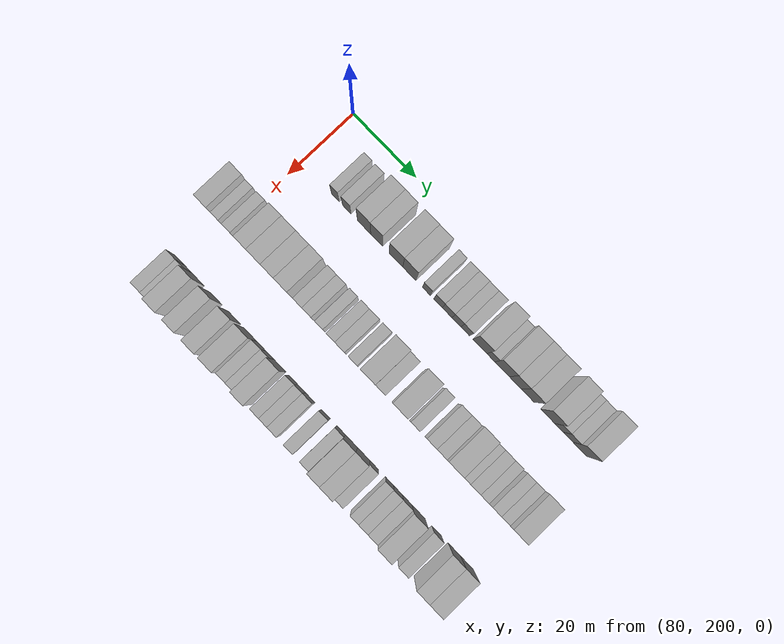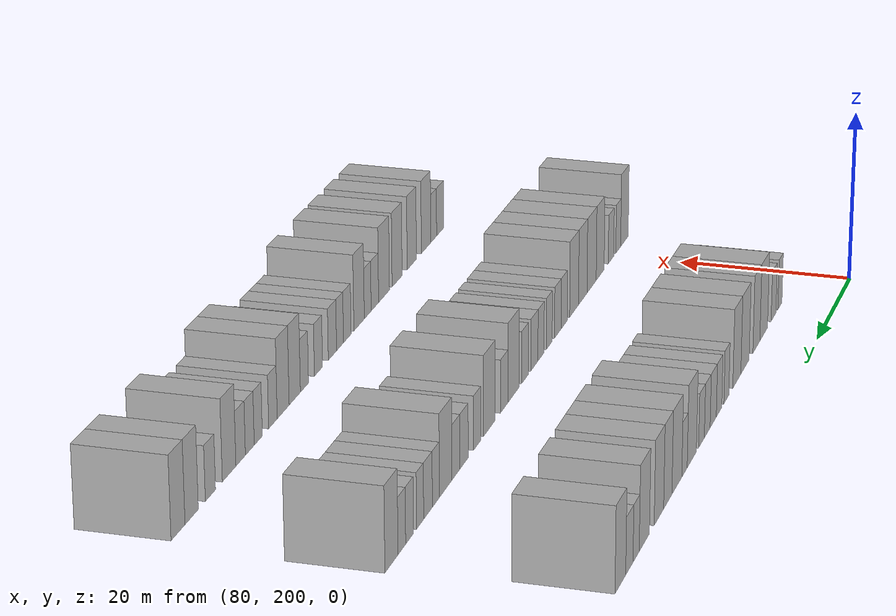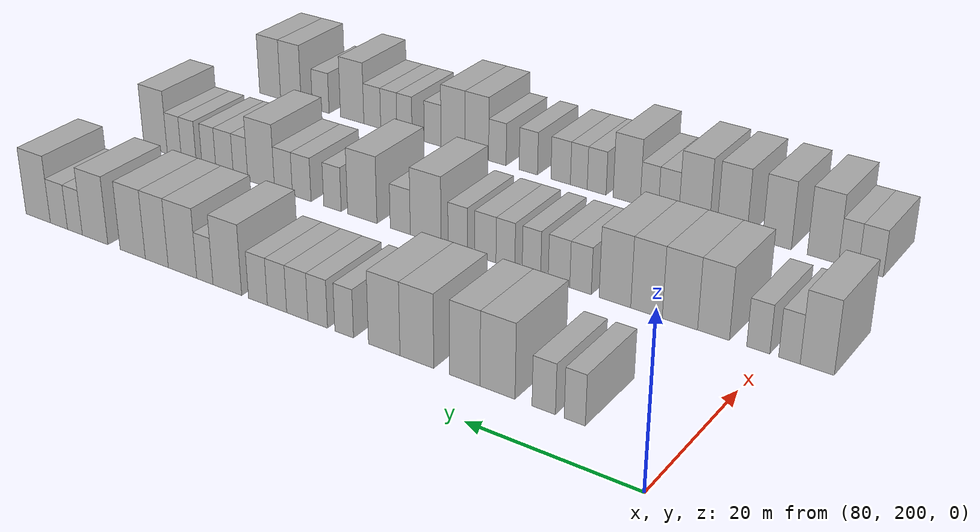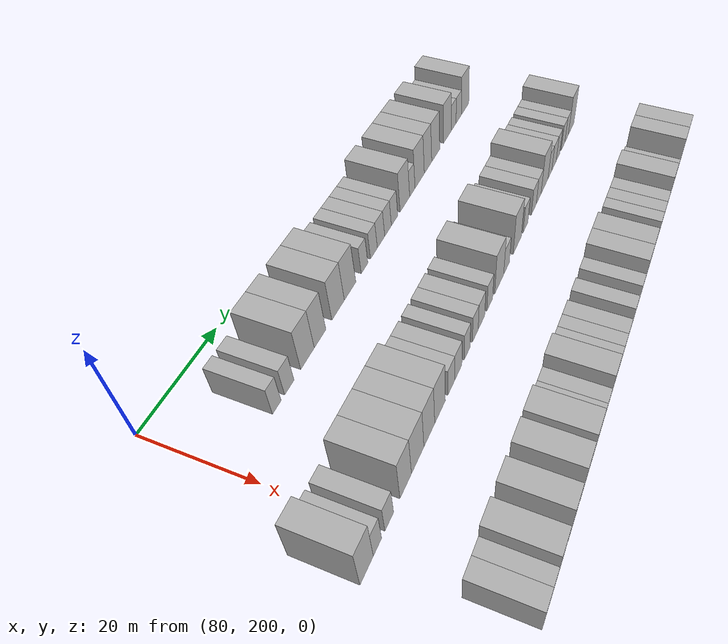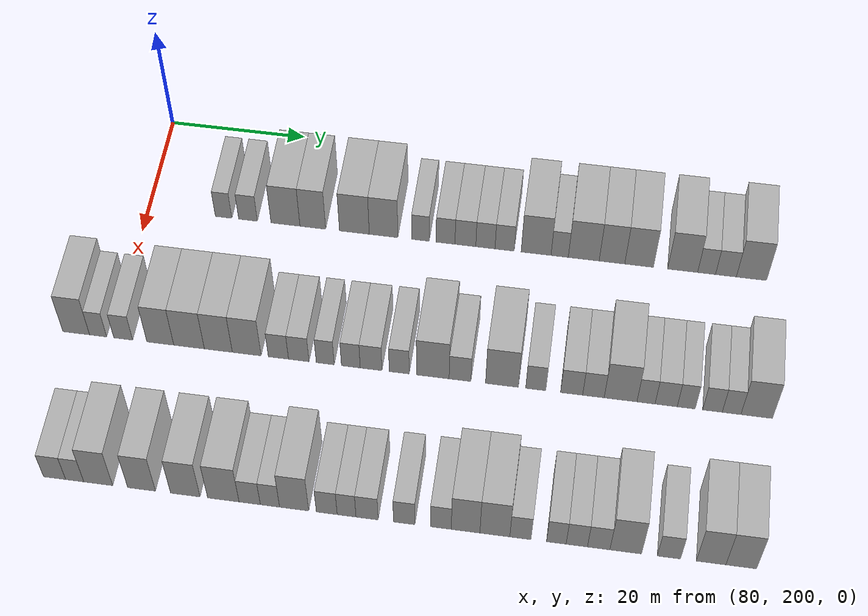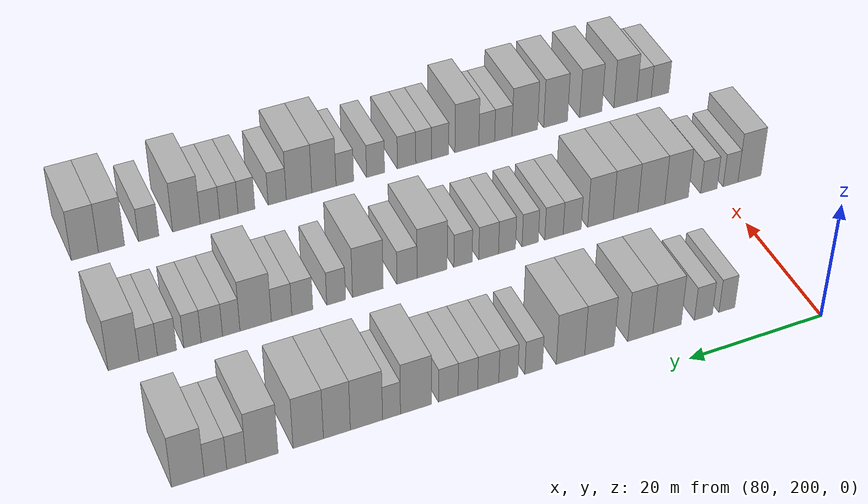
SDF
<sdf version="1.6">
 <world name="default">
  <model name="building_701">
   <static>1</static>
   <pose>91.0000 211.0076 0 0.000000 0.000000 0.000000</pose>
   <link name="link">
    <pose>0 0 3.00 0 0 0</pose>
    <collision name="collision"><geometry><box><size>10.0000 2.4177 6.0000</size></box></geometry></collision>
    <visual name="visual">
     <cast_shadows>0</cast_shadows>
     <geometry><box><size>10.0000 2.4177 6.0000</size></box></geometry>
     <material>
      <script>
       <uri>model://HANNAS_wall/materials/scripts</uri>
       <uri>model://HANNAS_wall/materials/textures</uri>
       <name>vrc/HANNAS_wall</name>
      </script>
     </material>
    </visual>
   </link>
  </model>
  <model name="building_702">
   <static>1</static>
   <pose>91.0000 214.5853 0 0.000000 0.000000 0.000000</pose>
   <link name="link">
    <pose>0 0 3.00 0 0 0</pose>
    <collision name="collision"><geometry><box><size>10.0000 2.7376 6.0000</size></box></geometry></collision>
    <visual name="visual">
     <cast_shadows>0</cast_shadows>
     <geometry><box><size>10.0000 2.7376 6.0000</size></box></geometry>
     <material>
      <script>
       <uri>model://HANNAS_wall/materials/scripts</uri>
       <uri>model://HANNAS_wall/materials/textures</uri>
       <name>vrc/HANNAS_wall</name>
      </script>
     </material>
    </visual>
   </link>
  </model>
  <model name="building_703">
   <static>1</static>
   <pose>91.0000 220.0649 0 0.000000 0.000000 0.000000</pose>
   <link name="link">
    <pose>0 0 4.50 0 0 0</pose>
    <collision name="collision"><geometry><box><size>10.0000 4.2215 9.0000</size></box></geometry></collision>
    <visual name="visual">
     <cast_shadows>0</cast_shadows>
     <geometry><box><size>10.0000 4.2215 9.0000</size></box></geometry>
     <material>
      <script>
       <uri>model://HANNAS_wall/materials/scripts</uri>
       <uri>model://HANNAS_wall/materials/textures</uri>
       <name>vrc/HANNAS_wall</name>
      </script>
     </material>
    </visual>
   </link>
  </model>
  <model name="building_704">
   <static>1</static>
   <pose>91.0000 224.0520 0 0.000000 0.000000 0.000000</pose>
   <link name="link">
    <pose>0 0 4.50 0 0 0</pose>
    <collision name="collision"><geometry><box><size>10.0000 3.7528 9.0000</size></box></geometry></collision>
    <visual name="visual">
     <cast_shadows>0</cast_shadows>
     <geometry><box><size>10.0000 3.7528 9.0000</size></box></geometry>
     <material>
      <script>
       <uri>model://HANNAS_wall/materials/scripts</uri>
       <uri>model://HANNAS_wall/materials/textures</uri>
       <name>vrc/HANNAS_wall</name>
      </script>
     </material>
    </visual>
   </link>
  </model>
  <model name="building_705">
   <static>1</static>
   <pose>91.0000 230.0885 0 0.000000 0.000000 0.000000</pose>
   <link name="link">
    <pose>0 0 4.50 0 0 0</pose>
    <collision name="collision"><geometry><box><size>10.0000 4.3200 9.0000</size></box></geometry></collision>
    <visual name="visual">
     <cast_shadows>0</cast_shadows>
     <geometry><box><size>10.0000 4.3200 9.0000</size></box></geometry>
     <material>
      <script>
       <uri>model://HANNAS_wall/materials/scripts</uri>
       <uri>model://HANNAS_wall/materials/textures</uri>
       <name>vrc/HANNAS_wall</name>
      </script>
     </material>
    </visual>
   </link>
  </model>
  <model name="building_706">
   <static>1</static>
   <pose>91.0000 234.3170 0 0.000000 0.000000 0.000000</pose>
   <link name="link">
    <pose>0 0 4.50 0 0 0</pose>
    <collision name="collision"><geometry><box><size>10.0000 4.1370 9.0000</size></box></geometry></collision>
    <visual name="visual">
     <cast_shadows>0</cast_shadows>
     <geometry><box><size>10.0000 4.1370 9.0000</size></box></geometry>
     <material>
      <script>
       <uri>model://HANNAS_wall/materials/scripts</uri>
       <uri>model://HANNAS_wall/materials/textures</uri>
       <name>vrc/HANNAS_wall</name>
      </script>
     </material>
    </visual>
   </link>
  </model>
  <model name="building_707">
   <static>1</static>
   <pose>91.0000 239.6479 0 0.000000 0.000000 0.000000</pose>
   <link name="link">
    <pose>0 0 3.00 0 0 0</pose>
    <collision name="collision"><geometry><box><size>10.0000 2.5249 6.0000</size></box></geometry></collision>
    <visual name="visual">
     <cast_shadows>0</cast_shadows>
     <geometry><box><size>10.0000 2.5249 6.0000</size></box></geometry>
     <material>
      <script>
       <uri>model://HANNAS_wall/materials/scripts</uri>
       <uri>model://HANNAS_wall/materials/textures</uri>
       <name>vrc/HANNAS_wall</name>
      </script>
     </material>
    </visual>
   </link>
  </model>
  <model name="building_708">
   <static>1</static>
   <pose>91.0000 243.2648 0 0.000000 0.000000 0.000000</pose>
   <link name="link">
    <pose>0 0 3.00 0 0 0</pose>
    <collision name="collision"><geometry><box><size>10.0000 2.7090 6.0000</size></box></geometry></collision>
    <visual name="visual">
     <cast_shadows>0</cast_shadows>
     <geometry><box><size>10.0000 2.7090 6.0000</size></box></geometry>
     <material>
      <script>
       <uri>model://HANNAS_wall/materials/scripts</uri>
       <uri>model://HANNAS_wall/materials/textures</uri>
       <name>vrc/HANNAS_wall</name>
      </script>
     </material>
    </visual>
   </link>
  </model>
  <model name="building_709">
   <static>1</static>
   <pose>91.0000 246.1154 0 0.000000 0.000000 0.000000</pose>
   <link name="link">
    <pose>0 0 3.00 0 0 0</pose>
    <collision name="collision"><geometry><box><size>10.0000 2.9921 6.0000</size></box></geometry></collision>
    <visual name="visual">
     <cast_shadows>0</cast_shadows>
     <geometry><box><size>10.0000 2.9921 6.0000</size></box></geometry>
     <material>
      <script>
       <uri>model://HANNAS_wall/materials/scripts</uri>
       <uri>model://HANNAS_wall/materials/textures</uri>
       <name>vrc/HANNAS_wall</name>
      </script>
     </material>
    </visual>
   </link>
  </model>
  <model name="building_710">
   <static>1</static>
   <pose>91.0000 248.9891 0 0.000000 0.000000 0.000000</pose>
   <link name="link">
    <pose>0 0 3.00 0 0 0</pose>
    <collision name="collision"><geometry><box><size>10.0000 2.7553 6.0000</size></box></geometry></collision>
    <visual name="visual">
     <cast_shadows>0</cast_shadows>
     <geometry><box><size>10.0000 2.7553 6.0000</size></box></geometry>
     <material>
      <script>
       <uri>model://HANNAS_wall/materials/scripts</uri>
       <uri>model://HANNAS_wall/materials/textures</uri>
       <name>vrc/HANNAS_wall</name>
      </script>
     </material>
    </visual>
   </link>
  </model>
  <model name="building_711">
   <static>1</static>
   <pose>91.0000 251.7352 0 0.000000 0.000000 0.000000</pose>
   <link name="link">
    <pose>0 0 3.00 0 0 0</pose>
    <collision name="collision"><geometry><box><size>10.0000 2.7369 6.0000</size></box></geometry></collision>
    <visual name="visual">
     <cast_shadows>0</cast_shadows>
     <geometry><box><size>10.0000 2.7369 6.0000</size></box></geometry>
     <material>
      <script>
       <uri>model://HANNAS_wall/materials/scripts</uri>
       <uri>model://HANNAS_wall/materials/textures</uri>
       <name>vrc/HANNAS_wall</name>
      </script>
     </material>
    </visual>
   </link>
  </model>
  <model name="building_712">
   <static>1</static>
   <pose>91.0000 256.2351 0 0.000000 0.000000 0.000000</pose>
   <link name="link">
    <pose>0 0 4.50 0 0 0</pose>
    <collision name="collision"><geometry><box><size>10.0000 4.2628 9.0000</size></box></geometry></collision>
    <visual name="visual">
     <cast_shadows>0</cast_shadows>
     <geometry><box><size>10.0000 4.2628 9.0000</size></box></geometry>
     <material>
      <script>
       <uri>model://HANNAS_wall/materials/scripts</uri>
       <uri>model://HANNAS_wall/materials/textures</uri>
       <name>vrc/HANNAS_wall</name>
      </script>
     </material>
    </visual>
   </link>
  </model>
  <model name="building_713">
   <static>1</static>
   <pose>91.0000 259.5935 0 0.000000 0.000000 0.000000</pose>
   <link name="link">
    <pose>0 0 3.00 0 0 0</pose>
    <collision name="collision"><geometry><box><size>10.0000 2.4540 6.0000</size></box></geometry></collision>
    <visual name="visual">
     <cast_shadows>0</cast_shadows>
     <geometry><box><size>10.0000 2.4540 6.0000</size></box></geometry>
     <material>
      <script>
       <uri>model://HANNAS_wall/materials/scripts</uri>
       <uri>model://HANNAS_wall/materials/textures</uri>
       <name>vrc/HANNAS_wall</name>
      </script>
     </material>
    </visual>
   </link>
  </model>
  <model name="building_714">
   <static>1</static>
   <pose>91.0000 263.0148 0 0.000000 0.000000 0.000000</pose>
   <link name="link">
    <pose>0 0 4.50 0 0 0</pose>
    <collision name="collision"><geometry><box><size>10.0000 4.3886 9.0000</size></box></geometry></collision>
    <visual name="visual">
     <cast_shadows>0</cast_shadows>
     <geometry><box><size>10.0000 4.3886 9.0000</size></box></geometry>
     <material>
      <script>
       <uri>model://HANNAS_wall/materials/scripts</uri>
       <uri>model://HANNAS_wall/materials/textures</uri>
       <name>vrc/HANNAS_wall</name>
      </script>
     </material>
    </visual>
   </link>
  </model>
  <model name="building_715">
   <static>1</static>
   <pose>91.0000 267.0245 0 0.000000 0.000000 0.000000</pose>
   <link name="link">
    <pose>0 0 4.50 0 0 0</pose>
    <collision name="collision"><geometry><box><size>10.0000 3.6309 9.0000</size></box></geometry></collision>
    <visual name="visual">
     <cast_shadows>0</cast_shadows>
     <geometry><box><size>10.0000 3.6309 9.0000</size></box></geometry>
     <material>
      <script>
       <uri>model://HANNAS_wall/materials/scripts</uri>
       <uri>model://HANNAS_wall/materials/textures</uri>
       <name>vrc/HANNAS_wall</name>
      </script>
     </material>
    </visual>
   </link>
  </model>
  <model name="building_716">
   <static>1</static>
   <pose>91.0000 270.8690 0 0.000000 0.000000 0.000000</pose>
   <link name="link">
    <pose>0 0 4.50 0 0 0</pose>
    <collision name="collision"><geometry><box><size>10.0000 4.0580 9.0000</size></box></geometry></collision>
    <visual name="visual">
     <cast_shadows>0</cast_shadows>
     <geometry><box><size>10.0000 4.0580 9.0000</size></box></geometry>
     <material>
      <script>
       <uri>model://HANNAS_wall/materials/scripts</uri>
       <uri>model://HANNAS_wall/materials/textures</uri>
       <name>vrc/HANNAS_wall</name>
      </script>
     </material>
    </visual>
   </link>
  </model>
  <model name="building_717">
   <static>1</static>
   <pose>91.0000 277.0155 0 0.000000 0.000000 0.000000</pose>
   <link name="link">
    <pose>0 0 4.50 0 0 0</pose>
    <collision name="collision"><geometry><box><size>10.0000 4.2349 9.0000</size></box></geometry></collision>
    <visual name="visual">
     <cast_shadows>0</cast_shadows>
     <geometry><box><size>10.0000 4.2349 9.0000</size></box></geometry>
     <material>
      <script>
       <uri>model://HANNAS_wall/materials/scripts</uri>
       <uri>model://HANNAS_wall/materials/textures</uri>
       <name>vrc/HANNAS_wall</name>
      </script>
     </material>
    </visual>
   </link>
  </model>
  <model name="building_718">
   <static>1</static>
   <pose>91.0000 280.3925 0 0.000000 0.000000 0.000000</pose>
   <link name="link">
    <pose>0 0 3.00 0 0 0</pose>
    <collision name="collision"><geometry><box><size>10.0000 2.5193 6.0000</size></box></geometry></collision>
    <visual name="visual">
     <cast_shadows>0</cast_shadows>
     <geometry><box><size>10.0000 2.5193 6.0000</size></box></geometry>
     <material>
      <script>
       <uri>model://HANNAS_wall/materials/scripts</uri>
       <uri>model://HANNAS_wall/materials/textures</uri>
       <name>vrc/HANNAS_wall</name>
      </script>
     </material>
    </visual>
   </link>
  </model>
  <model name="building_719">
   <static>1</static>
   <pose>91.0000 283.1138 0 0.000000 0.000000 0.000000</pose>
   <link name="link">
    <pose>0 0 3.00 0 0 0</pose>
    <collision name="collision"><geometry><box><size>10.0000 2.9232 6.0000</size></box></geometry></collision>
    <visual name="visual">
     <cast_shadows>0</cast_shadows>
     <geometry><box><size>10.0000 2.9232 6.0000</size></box></geometry>
     <material>
      <script>
       <uri>model://HANNAS_wall/materials/scripts</uri>
       <uri>model://HANNAS_wall/materials/textures</uri>
       <name>vrc/HANNAS_wall</name>
      </script>
     </material>
    </visual>
   </link>
  </model>
  <model name="building_720">
   <static>1</static>
   <pose>91.0000 286.6935 0 0.000000 0.000000 0.000000</pose>
   <link name="link">
    <pose>0 0 4.50 0 0 0</pose>
    <collision name="collision"><geometry><box><size>10.0000 4.2363 9.0000</size></box></geometry></collision>
    <visual name="visual">
     <cast_shadows>0</cast_shadows>
     <geometry><box><size>10.0000 4.2363 9.0000</size></box></geometry>
     <material>
      <script>
       <uri>model://HANNAS_wall/materials/scripts</uri>
       <uri>model://HANNAS_wall/materials/textures</uri>
       <name>vrc/HANNAS_wall</name>
      </script>
     </material>
    </visual>
   </link>
  </model>
  <model name="building_880">
   <static>1</static>
   <pose>113.0000 194.8493 0 0.000000 0.000000 0.000000</pose>
   <link name="link">
    <pose>0 0 4.50 0 0 0</pose>
    <collision name="collision"><geometry><box><size>10.0000 3.7716 9.0000</size></box></geometry></collision>
    <visual name="visual">
     <cast_shadows>0</cast_shadows>
     <geometry><box><size>10.0000 3.7716 9.0000</size></box></geometry>
     <material>
      <script>
       <uri>model://HANNAS_wall/materials/scripts</uri>
       <uri>model://HANNAS_wall/materials/textures</uri>
       <name>vrc/HANNAS_wall</name>
      </script>
     </material>
    </visual>
   </link>
  </model>
  <model name="building_881">
   <static>1</static>
   <pose>113.0000 197.9437 0 0.000000 0.000000 0.000000</pose>
   <link name="link">
    <pose>0 0 3.00 0 0 0</pose>
    <collision name="collision"><geometry><box><size>10.0000 2.4173 6.0000</size></box></geometry></collision>
    <visual name="visual">
     <cast_shadows>0</cast_shadows>
     <geometry><box><size>10.0000 2.4173 6.0000</size></box></geometry>
     <material>
      <script>
       <uri>model://HANNAS_wall/materials/scripts</uri>
       <uri>model://HANNAS_wall/materials/textures</uri>
       <name>vrc/HANNAS_wall</name>
      </script>
     </material>
    </visual>
   </link>
  </model>
  <model name="building_882">
   <static>1</static>
   <pose>113.0000 201.4811 0 0.000000 0.000000 0.000000</pose>
   <link name="link">
    <pose>0 0 3.00 0 0 0</pose>
    <collision name="collision"><geometry><box><size>10.0000 2.6575 6.0000</size></box></geometry></collision>
    <visual name="visual">
     <cast_shadows>0</cast_shadows>
     <geometry><box><size>10.0000 2.6575 6.0000</size></box></geometry>
     <material>
      <script>
       <uri>model://HANNAS_wall/materials/scripts</uri>
       <uri>model://HANNAS_wall/materials/textures</uri>
       <name>vrc/HANNAS_wall</name>
      </script>
     </material>
    </visual>
   </link>
  </model>
  <model name="building_883">
   <static>1</static>
   <pose>113.0000 206.6975 0 0.000000 0.000000 0.000000</pose>
   <link name="link">
    <pose>0 0 4.50 0 0 0</pose>
    <collision name="collision"><geometry><box><size>10.0000 3.7753 9.0000</size></box></geometry></collision>
    <visual name="visual">
     <cast_shadows>0</cast_shadows>
     <geometry><box><size>10.0000 3.7753 9.0000</size></box></geometry>
     <material>
      <script>
       <uri>model://HANNAS_wall/materials/scripts</uri>
       <uri>model://HANNAS_wall/materials/textures</uri>
       <name>vrc/HANNAS_wall</name>
      </script>
     </material>
    </visual>
   </link>
  </model>
  <model name="building_884">
   <static>1</static>
   <pose>113.0000 210.7255 0 0.000000 0.000000 0.000000</pose>
   <link name="link">
    <pose>0 0 4.50 0 0 0</pose>
    <collision name="collision"><geometry><box><size>10.0000 4.2805 9.0000</size></box></geometry></collision>
    <visual name="visual">
     <cast_shadows>0</cast_shadows>
     <geometry><box><size>10.0000 4.2805 9.0000</size></box></geometry>
     <material>
      <script>
       <uri>model://HANNAS_wall/materials/scripts</uri>
       <uri>model://HANNAS_wall/materials/textures</uri>
       <name>vrc/HANNAS_wall</name>
      </script>
     </material>
    </visual>
   </link>
  </model>
  <model name="building_885">
   <static>1</static>
   <pose>113.0000 214.8183 0 0.000000 0.000000 0.000000</pose>
   <link name="link">
    <pose>0 0 4.50 0 0 0</pose>
    <collision name="collision"><geometry><box><size>10.0000 3.9052 9.0000</size></box></geometry></collision>
    <visual name="visual">
     <cast_shadows>0</cast_shadows>
     <geometry><box><size>10.0000 3.9052 9.0000</size></box></geometry>
     <material>
      <script>
       <uri>model://HANNAS_wall/materials/scripts</uri>
       <uri>model://HANNAS_wall/materials/textures</uri>
       <name>vrc/HANNAS_wall</name>
      </script>
     </material>
    </visual>
   </link>
  </model>
  <model name="building_886">
   <static>1</static>
   <pose>113.0000 218.7772 0 0.000000 0.000000 0.000000</pose>
   <link name="link">
    <pose>0 0 4.50 0 0 0</pose>
    <collision name="collision"><geometry><box><size>10.0000 4.0126 9.0000</size></box></geometry></collision>
    <visual name="visual">
     <cast_shadows>0</cast_shadows>
     <geometry><box><size>10.0000 4.0126 9.0000</size></box></geometry>
     <material>
      <script>
       <uri>model://HANNAS_wall/materials/scripts</uri>
       <uri>model://HANNAS_wall/materials/textures</uri>
       <name>vrc/HANNAS_wall</name>
      </script>
     </material>
    </visual>
   </link>
  </model>
  <model name="building_887">
   <static>1</static>
   <pose>113.0000 223.1815 0 0.000000 0.000000 0.000000</pose>
   <link name="link">
    <pose>0 0 3.00 0 0 0</pose>
    <collision name="collision"><geometry><box><size>10.0000 2.7960 6.0000</size></box></geometry></collision>
    <visual name="visual">
     <cast_shadows>0</cast_shadows>
     <geometry><box><size>10.0000 2.7960 6.0000</size></box></geometry>
     <material>
      <script>
       <uri>model://HANNAS_wall/materials/scripts</uri>
       <uri>model://HANNAS_wall/materials/textures</uri>
       <name>vrc/HANNAS_wall</name>
      </script>
     </material>
    </visual>
   </link>
  </model>
  <model name="building_888">
   <static>1</static>
   <pose>113.0000 226.0019 0 0.000000 0.000000 0.000000</pose>
   <link name="link">
    <pose>0 0 3.00 0 0 0</pose>
    <collision name="collision"><geometry><box><size>10.0000 2.8448 6.0000</size></box></geometry></collision>
    <visual name="visual">
     <cast_shadows>0</cast_shadows>
     <geometry><box><size>10.0000 2.8448 6.0000</size></box></geometry>
     <material>
      <script>
       <uri>model://HANNAS_wall/materials/scripts</uri>
       <uri>model://HANNAS_wall/materials/textures</uri>
       <name>vrc/HANNAS_wall</name>
      </script>
     </material>
    </visual>
   </link>
  </model>
  <model name="building_889">
   <static>1</static>
   <pose>113.0000 229.6668 0 0.000000 0.000000 0.000000</pose>
   <link name="link">
    <pose>0 0 3.00 0 0 0</pose>
    <collision name="collision"><geometry><box><size>10.0000 2.4850 6.0000</size></box></geometry></collision>
    <visual name="visual">
     <cast_shadows>0</cast_shadows>
     <geometry><box><size>10.0000 2.4850 6.0000</size></box></geometry>
     <material>
      <script>
       <uri>model://HANNAS_wall/materials/scripts</uri>
       <uri>model://HANNAS_wall/materials/textures</uri>
       <name>vrc/HANNAS_wall</name>
      </script>
     </material>
    </visual>
   </link>
  </model>
  <model name="building_890">
   <static>1</static>
   <pose>113.0000 233.2000 0 0.000000 0.000000 0.000000</pose>
   <link name="link">
    <pose>0 0 3.00 0 0 0</pose>
    <collision name="collision"><geometry><box><size>10.0000 2.5813 6.0000</size></box></geometry></collision>
    <visual name="visual">
     <cast_shadows>0</cast_shadows>
     <geometry><box><size>10.0000 2.5813 6.0000</size></box></geometry>
     <material>
      <script>
       <uri>model://HANNAS_wall/materials/scripts</uri>
       <uri>model://HANNAS_wall/materials/textures</uri>
       <name>vrc/HANNAS_wall</name>
      </script>
     </material>
    </visual>
   </link>
  </model>
  <model name="building_891">
   <static>1</static>
   <pose>113.0000 235.9859 0 0.000000 0.000000 0.000000</pose>
   <link name="link">
    <pose>0 0 3.00 0 0 0</pose>
    <collision name="collision"><geometry><box><size>10.0000 2.9905 6.0000</size></box></geometry></collision>
    <visual name="visual">
     <cast_shadows>0</cast_shadows>
     <geometry><box><size>10.0000 2.9905 6.0000</size></box></geometry>
     <material>
      <script>
       <uri>model://HANNAS_wall/materials/scripts</uri>
       <uri>model://HANNAS_wall/materials/textures</uri>
       <name>vrc/HANNAS_wall</name>
      </script>
     </material>
    </visual>
   </link>
  </model>
  <model name="building_892">
   <static>1</static>
   <pose>113.0000 239.8513 0 0.000000 0.000000 0.000000</pose>
   <link name="link">
    <pose>0 0 3.00 0 0 0</pose>
    <collision name="collision"><geometry><box><size>10.0000 2.7404 6.0000</size></box></geometry></collision>
    <visual name="visual">
     <cast_shadows>0</cast_shadows>
     <geometry><box><size>10.0000 2.7404 6.0000</size></box></geometry>
     <material>
      <script>
       <uri>model://HANNAS_wall/materials/scripts</uri>
       <uri>model://HANNAS_wall/materials/textures</uri>
       <name>vrc/HANNAS_wall</name>
      </script>
     </material>
    </visual>
   </link>
  </model>
  <model name="building_893">
   <static>1</static>
   <pose>113.0000 244.4553 0 0.000000 0.000000 0.000000</pose>
   <link name="link">
    <pose>0 0 4.50 0 0 0</pose>
    <collision name="collision"><geometry><box><size>10.0000 4.4674 9.0000</size></box></geometry></collision>
    <visual name="visual">
     <cast_shadows>0</cast_shadows>
     <geometry><box><size>10.0000 4.4674 9.0000</size></box></geometry>
     <material>
      <script>
       <uri>model://HANNAS_wall/materials/scripts</uri>
       <uri>model://HANNAS_wall/materials/textures</uri>
       <name>vrc/HANNAS_wall</name>
      </script>
     </material>
    </visual>
   </link>
  </model>
  <model name="building_894">
   <static>1</static>
   <pose>113.0000 248.1732 0 0.000000 0.000000 0.000000</pose>
   <link name="link">
    <pose>0 0 3.00 0 0 0</pose>
    <collision name="collision"><geometry><box><size>10.0000 2.9684 6.0000</size></box></geometry></collision>
    <visual name="visual">
     <cast_shadows>0</cast_shadows>
     <geometry><box><size>10.0000 2.9684 6.0000</size></box></geometry>
     <material>
      <script>
       <uri>model://HANNAS_wall/materials/scripts</uri>
       <uri>model://HANNAS_wall/materials/textures</uri>
       <name>vrc/HANNAS_wall</name>
      </script>
     </material>
    </visual>
   </link>
  </model>
  <model name="building_895">
   <static>1</static>
   <pose>113.0000 253.8901 0 0.000000 0.000000 0.000000</pose>
   <link name="link">
    <pose>0 0 4.50 0 0 0</pose>
    <collision name="collision"><geometry><box><size>10.0000 4.4656 9.0000</size></box></geometry></collision>
    <visual name="visual">
     <cast_shadows>0</cast_shadows>
     <geometry><box><size>10.0000 4.4656 9.0000</size></box></geometry>
     <material>
      <script>
       <uri>model://HANNAS_wall/materials/scripts</uri>
       <uri>model://HANNAS_wall/materials/textures</uri>
       <name>vrc/HANNAS_wall</name>
      </script>
     </material>
    </visual>
   </link>
  </model>
  <model name="building_896">
   <static>1</static>
   <pose>113.0000 258.4856 0 0.000000 0.000000 0.000000</pose>
   <link name="link">
    <pose>0 0 3.00 0 0 0</pose>
    <collision name="collision"><geometry><box><size>10.0000 2.7254 6.0000</size></box></geometry></collision>
    <visual name="visual">
     <cast_shadows>0</cast_shadows>
     <geometry><box><size>10.0000 2.7254 6.0000</size></box></geometry>
     <material>
      <script>
       <uri>model://HANNAS_wall/materials/scripts</uri>
       <uri>model://HANNAS_wall/materials/textures</uri>
       <name>vrc/HANNAS_wall</name>
      </script>
     </material>
    </visual>
   </link>
  </model>
  <model name="building_897">
   <static>1</static>
   <pose>113.0000 263.3397 0 0.000000 0.000000 0.000000</pose>
   <link name="link">
    <pose>0 0 3.00 0 0 0</pose>
    <collision name="collision"><geometry><box><size>10.0000 2.9828 6.0000</size></box></geometry></collision>
    <visual name="visual">
     <cast_shadows>0</cast_shadows>
     <geometry><box><size>10.0000 2.9828 6.0000</size></box></geometry>
     <material>
      <script>
       <uri>model://HANNAS_wall/materials/scripts</uri>
       <uri>model://HANNAS_wall/materials/textures</uri>
       <name>vrc/HANNAS_wall</name>
      </script>
     </material>
    </visual>
   </link>
  </model>
  <model name="building_898">
   <static>1</static>
   <pose>113.0000 266.2859 0 0.000000 0.000000 0.000000</pose>
   <link name="link">
    <pose>0 0 3.00 0 0 0</pose>
    <collision name="collision"><geometry><box><size>10.0000 2.9097 6.0000</size></box></geometry></collision>
    <visual name="visual">
     <cast_shadows>0</cast_shadows>
     <geometry><box><size>10.0000 2.9097 6.0000</size></box></geometry>
     <material>
      <script>
       <uri>model://HANNAS_wall/materials/scripts</uri>
       <uri>model://HANNAS_wall/materials/textures</uri>
       <name>vrc/HANNAS_wall</name>
      </script>
     </material>
    </visual>
   </link>
  </model>
  <model name="building_899">
   <static>1</static>
   <pose>113.0000 269.9465 0 0.000000 0.000000 0.000000</pose>
   <link name="link">
    <pose>0 0 4.50 0 0 0</pose>
    <collision name="collision"><geometry><box><size>10.0000 4.4114 9.0000</size></box></geometry></collision>
    <visual name="visual">
     <cast_shadows>0</cast_shadows>
     <geometry><box><size>10.0000 4.4114 9.0000</size></box></geometry>
     <material>
      <script>
       <uri>model://HANNAS_wall/materials/scripts</uri>
       <uri>model://HANNAS_wall/materials/textures</uri>
       <name>vrc/HANNAS_wall</name>
      </script>
     </material>
    </visual>
   </link>
  </model>
  <model name="building_900">
   <static>1</static>
   <pose>113.0000 273.3688 0 0.000000 0.000000 0.000000</pose>
   <link name="link">
    <pose>0 0 3.00 0 0 0</pose>
    <collision name="collision"><geometry><box><size>10.0000 2.4332 6.0000</size></box></geometry></collision>
    <visual name="visual">
     <cast_shadows>0</cast_shadows>
     <geometry><box><size>10.0000 2.4332 6.0000</size></box></geometry>
     <material>
      <script>
       <uri>model://HANNAS_wall/materials/scripts</uri>
       <uri>model://HANNAS_wall/materials/textures</uri>
       <name>vrc/HANNAS_wall</name>
      </script>
     </material>
    </visual>
   </link>
  </model>
  <model name="building_901">
   <static>1</static>
   <pose>113.0000 276.0697 0 0.000000 0.000000 0.000000</pose>
   <link name="link">
    <pose>0 0 3.00 0 0 0</pose>
    <collision name="collision"><geometry><box><size>10.0000 2.9687 6.0000</size></box></geometry></collision>
    <visual name="visual">
     <cast_shadows>0</cast_shadows>
     <geometry><box><size>10.0000 2.9687 6.0000</size></box></geometry>
     <material>
      <script>
       <uri>model://HANNAS_wall/materials/scripts</uri>
       <uri>model://HANNAS_wall/materials/textures</uri>
       <name>vrc/HANNAS_wall</name>
      </script>
     </material>
    </visual>
   </link>
  </model>
  <model name="building_902">
   <static>1</static>
   <pose>113.0000 278.7575 0 0.000000 0.000000 0.000000</pose>
   <link name="link">
    <pose>0 0 3.00 0 0 0</pose>
    <collision name="collision"><geometry><box><size>10.0000 2.4069 6.0000</size></box></geometry></collision>
    <visual name="visual">
     <cast_shadows>0</cast_shadows>
     <geometry><box><size>10.0000 2.4069 6.0000</size></box></geometry>
     <material>
      <script>
       <uri>model://HANNAS_wall/materials/scripts</uri>
       <uri>model://HANNAS_wall/materials/textures</uri>
       <name>vrc/HANNAS_wall</name>
      </script>
     </material>
    </visual>
   </link>
  </model>
  <model name="building_903">
   <static>1</static>
   <pose>113.0000 282.2659 0 0.000000 0.000000 0.000000</pose>
   <link name="link">
    <pose>0 0 3.00 0 0 0</pose>
    <collision name="collision"><geometry><box><size>10.0000 2.6098 6.0000</size></box></geometry></collision>
    <visual name="visual">
     <cast_shadows>0</cast_shadows>
     <geometry><box><size>10.0000 2.6098 6.0000</size></box></geometry>
     <material>
      <script>
       <uri>model://HANNAS_wall/materials/scripts</uri>
       <uri>model://HANNAS_wall/materials/textures</uri>
       <name>vrc/HANNAS_wall</name>
      </script>
     </material>
    </visual>
   </link>
  </model>
  <model name="building_904">
   <static>1</static>
   <pose>113.0000 284.8160 0 0.000000 0.000000 0.000000</pose>
   <link name="link">
    <pose>0 0 3.00 0 0 0</pose>
    <collision name="collision"><geometry><box><size>10.0000 2.4905 6.0000</size></box></geometry></collision>
    <visual name="visual">
     <cast_shadows>0</cast_shadows>
     <geometry><box><size>10.0000 2.4905 6.0000</size></box></geometry>
     <material>
      <script>
       <uri>model://HANNAS_wall/materials/scripts</uri>
       <uri>model://HANNAS_wall/materials/textures</uri>
       <name>vrc/HANNAS_wall</name>
      </script>
     </material>
    </visual>
   </link>
  </model>
  <model name="building_905">
   <static>1</static>
   <pose>113.0000 288.1620 0 0.000000 0.000000 0.000000</pose>
   <link name="link">
    <pose>0 0 4.50 0 0 0</pose>
    <collision name="collision"><geometry><box><size>10.0000 4.2014 9.0000</size></box></geometry></collision>
    <visual name="visual">
     <cast_shadows>0</cast_shadows>
     <geometry><box><size>10.0000 4.2014 9.0000</size></box></geometry>
     <material>
      <script>
       <uri>model://HANNAS_wall/materials/scripts</uri>
       <uri>model://HANNAS_wall/materials/textures</uri>
       <name>vrc/HANNAS_wall</name>
      </script>
     </material>
    </visual>
   </link>
  </model>
  <model name="building_1076">
   <static>1</static>
   <pose>135.0000 197.5826 0 0.000000 0.000000 0.000000</pose>
   <link name="link">
    <pose>0 0 3.00 0 0 0</pose>
    <collision name="collision"><geometry><box><size>10.0000 2.9649 6.0000</size></box></geometry></collision>
    <visual name="visual">
     <cast_shadows>0</cast_shadows>
     <geometry><box><size>10.0000 2.9649 6.0000</size></box></geometry>
     <material>
      <script>
       <uri>model://HANNAS_wall/materials/scripts</uri>
       <uri>model://HANNAS_wall/materials/textures</uri>
       <name>vrc/HANNAS_wall</name>
      </script>
     </material>
    </visual>
   </link>
  </model>
  <model name="building_1077">
   <static>1</static>
   <pose>135.0000 200.2830 0 0.000000 0.000000 0.000000</pose>
   <link name="link">
    <pose>0 0 3.00 0 0 0</pose>
    <collision name="collision"><geometry><box><size>10.0000 2.4360 6.0000</size></box></geometry></collision>
    <visual name="visual">
     <cast_shadows>0</cast_shadows>
     <geometry><box><size>10.0000 2.4360 6.0000</size></box></geometry>
     <material>
      <script>
       <uri>model://HANNAS_wall/materials/scripts</uri>
       <uri>model://HANNAS_wall/materials/textures</uri>
       <name>vrc/HANNAS_wall</name>
      </script>
     </material>
    </visual>
   </link>
  </model>
  <model name="building_1078">
   <static>1</static>
   <pose>135.0000 203.4335 0 0.000000 0.000000 0.000000</pose>
   <link name="link">
    <pose>0 0 4.50 0 0 0</pose>
    <collision name="collision"><geometry><box><size>10.0000 3.8650 9.0000</size></box></geometry></collision>
    <visual name="visual">
     <cast_shadows>0</cast_shadows>
     <geometry><box><size>10.0000 3.8650 9.0000</size></box></geometry>
     <material>
      <script>
       <uri>model://HANNAS_wall/materials/scripts</uri>
       <uri>model://HANNAS_wall/materials/textures</uri>
       <name>vrc/HANNAS_wall</name>
      </script>
     </material>
    </visual>
   </link>
  </model>
  <model name="building_1079">
   <static>1</static>
   <pose>135.0000 209.2183 0 0.000000 0.000000 0.000000</pose>
   <link name="link">
    <pose>0 0 4.50 0 0 0</pose>
    <collision name="collision"><geometry><box><size>10.0000 3.7044 9.0000</size></box></geometry></collision>
    <visual name="visual">
     <cast_shadows>0</cast_shadows>
     <geometry><box><size>10.0000 3.7044 9.0000</size></box></geometry>
     <material>
      <script>
       <uri>model://HANNAS_wall/materials/scripts</uri>
       <uri>model://HANNAS_wall/materials/textures</uri>
       <name>vrc/HANNAS_wall</name>
      </script>
     </material>
    </visual>
   </link>
  </model>
  <model name="building_1080">
   <static>1</static>
   <pose>135.0000 215.0271 0 0.000000 0.000000 0.000000</pose>
   <link name="link">
    <pose>0 0 4.50 0 0 0</pose>
    <collision name="collision"><geometry><box><size>10.0000 3.9132 9.0000</size></box></geometry></collision>
    <visual name="visual">
     <cast_shadows>0</cast_shadows>
     <geometry><box><size>10.0000 3.9132 9.0000</size></box></geometry>
     <material>
      <script>
       <uri>model://HANNAS_wall/materials/scripts</uri>
       <uri>model://HANNAS_wall/materials/textures</uri>
       <name>vrc/HANNAS_wall</name>
      </script>
     </material>
    </visual>
   </link>
  </model>
  <model name="building_1081">
   <static>1</static>
   <pose>135.0000 220.0634 0 0.000000 0.000000 0.000000</pose>
   <link name="link">
    <pose>0 0 4.50 0 0 0</pose>
    <collision name="collision"><geometry><box><size>10.0000 4.1594 9.0000</size></box></geometry></collision>
    <visual name="visual">
     <cast_shadows>0</cast_shadows>
     <geometry><box><size>10.0000 4.1594 9.0000</size></box></geometry>
     <material>
      <script>
       <uri>model://HANNAS_wall/materials/scripts</uri>
       <uri>model://HANNAS_wall/materials/textures</uri>
       <name>vrc/HANNAS_wall</name>
      </script>
     </material>
    </visual>
   </link>
  </model>
  <model name="building_1082">
   <static>1</static>
   <pose>135.0000 223.5458 0 0.000000 0.000000 0.000000</pose>
   <link name="link">
    <pose>0 0 3.00 0 0 0</pose>
    <collision name="collision"><geometry><box><size>10.0000 2.8054 6.0000</size></box></geometry></collision>
    <visual name="visual">
     <cast_shadows>0</cast_shadows>
     <geometry><box><size>10.0000 2.8054 6.0000</size></box></geometry>
     <material>
      <script>
       <uri>model://HANNAS_wall/materials/scripts</uri>
       <uri>model://HANNAS_wall/materials/textures</uri>
       <name>vrc/HANNAS_wall</name>
      </script>
     </material>
    </visual>
   </link>
  </model>
  <model name="building_1083">
   <static>1</static>
   <pose>135.0000 226.2136 0 0.000000 0.000000 0.000000</pose>
   <link name="link">
    <pose>0 0 3.00 0 0 0</pose>
    <collision name="collision"><geometry><box><size>10.0000 2.5301 6.0000</size></box></geometry></collision>
    <visual name="visual">
     <cast_shadows>0</cast_shadows>
     <geometry><box><size>10.0000 2.5301 6.0000</size></box></geometry>
     <material>
      <script>
       <uri>model://HANNAS_wall/materials/scripts</uri>
       <uri>model://HANNAS_wall/materials/textures</uri>
       <name>vrc/HANNAS_wall</name>
      </script>
     </material>
    </visual>
   </link>
  </model>
  <model name="building_1084">
   <static>1</static>
   <pose>135.0000 229.3937 0 0.000000 0.000000 0.000000</pose>
   <link name="link">
    <pose>0 0 4.50 0 0 0</pose>
    <collision name="collision"><geometry><box><size>10.0000 3.8301 9.0000</size></box></geometry></collision>
    <visual name="visual">
     <cast_shadows>0</cast_shadows>
     <geometry><box><size>10.0000 3.8301 9.0000</size></box></geometry>
     <material>
      <script>
       <uri>model://HANNAS_wall/materials/scripts</uri>
       <uri>model://HANNAS_wall/materials/textures</uri>
       <name>vrc/HANNAS_wall</name>
      </script>
     </material>
    </visual>
   </link>
  </model>
  <model name="building_1085">
   <static>1</static>
   <pose>135.0000 233.6720 0 0.000000 0.000000 0.000000</pose>
   <link name="link">
    <pose>0 0 3.00 0 0 0</pose>
    <collision name="collision"><geometry><box><size>10.0000 2.7266 6.0000</size></box></geometry></collision>
    <visual name="visual">
     <cast_shadows>0</cast_shadows>
     <geometry><box><size>10.0000 2.7266 6.0000</size></box></geometry>
     <material>
      <script>
       <uri>model://HANNAS_wall/materials/scripts</uri>
       <uri>model://HANNAS_wall/materials/textures</uri>
       <name>vrc/HANNAS_wall</name>
      </script>
     </material>
    </visual>
   </link>
  </model>
  <model name="building_1086">
   <static>1</static>
   <pose>135.0000 236.2633 0 0.000000 0.000000 0.000000</pose>
   <link name="link">
    <pose>0 0 3.00 0 0 0</pose>
    <collision name="collision"><geometry><box><size>10.0000 2.4560 6.0000</size></box></geometry></collision>
    <visual name="visual">
     <cast_shadows>0</cast_shadows>
     <geometry><box><size>10.0000 2.4560 6.0000</size></box></geometry>
     <material>
      <script>
       <uri>model://HANNAS_wall/materials/scripts</uri>
       <uri>model://HANNAS_wall/materials/textures</uri>
       <name>vrc/HANNAS_wall</name>
      </script>
     </material>
    </visual>
   </link>
  </model>
  <model name="building_1087">
   <static>1</static>
   <pose>135.0000 238.9368 0 0.000000 0.000000 0.000000</pose>
   <link name="link">
    <pose>0 0 3.00 0 0 0</pose>
    <collision name="collision"><geometry><box><size>10.0000 2.8910 6.0000</size></box></geometry></collision>
    <visual name="visual">
     <cast_shadows>0</cast_shadows>
     <geometry><box><size>10.0000 2.8910 6.0000</size></box></geometry>
     <material>
      <script>
       <uri>model://HANNAS_wall/materials/scripts</uri>
       <uri>model://HANNAS_wall/materials/textures</uri>
       <name>vrc/HANNAS_wall</name>
      </script>
     </material>
    </visual>
   </link>
  </model>
  <model name="building_1088">
   <static>1</static>
   <pose>135.0000 243.7753 0 0.000000 0.000000 0.000000</pose>
   <link name="link">
    <pose>0 0 3.00 0 0 0</pose>
    <collision name="collision"><geometry><box><size>10.0000 2.7860 6.0000</size></box></geometry></collision>
    <visual name="visual">
     <cast_shadows>0</cast_shadows>
     <geometry><box><size>10.0000 2.7860 6.0000</size></box></geometry>
     <material>
      <script>
       <uri>model://HANNAS_wall/materials/scripts</uri>
       <uri>model://HANNAS_wall/materials/textures</uri>
       <name>vrc/HANNAS_wall</name>
      </script>
     </material>
    </visual>
   </link>
  </model>
  <model name="building_1089">
   <static>1</static>
   <pose>135.0000 248.5235 0 0.000000 0.000000 0.000000</pose>
   <link name="link">
    <pose>0 0 3.00 0 0 0</pose>
    <collision name="collision"><geometry><box><size>10.0000 2.7103 6.0000</size></box></geometry></collision>
    <visual name="visual">
     <cast_shadows>0</cast_shadows>
     <geometry><box><size>10.0000 2.7103 6.0000</size></box></geometry>
     <material>
      <script>
       <uri>model://HANNAS_wall/materials/scripts</uri>
       <uri>model://HANNAS_wall/materials/textures</uri>
       <name>vrc/HANNAS_wall</name>
      </script>
     </material>
    </visual>
   </link>
  </model>
  <model name="building_1090">
   <static>1</static>
   <pose>135.0000 251.7301 0 0.000000 0.000000 0.000000</pose>
   <link name="link">
    <pose>0 0 4.50 0 0 0</pose>
    <collision name="collision"><geometry><box><size>10.0000 3.7030 9.0000</size></box></geometry></collision>
    <visual name="visual">
     <cast_shadows>0</cast_shadows>
     <geometry><box><size>10.0000 3.7030 9.0000</size></box></geometry>
     <material>
      <script>
       <uri>model://HANNAS_wall/materials/scripts</uri>
       <uri>model://HANNAS_wall/materials/textures</uri>
       <name>vrc/HANNAS_wall</name>
      </script>
     </material>
    </visual>
   </link>
  </model>
  <model name="building_1091">
   <static>1</static>
   <pose>135.0000 255.5142 0 0.000000 0.000000 0.000000</pose>
   <link name="link">
    <pose>0 0 4.50 0 0 0</pose>
    <collision name="collision"><geometry><box><size>10.0000 3.8653 9.0000</size></box></geometry></collision>
    <visual name="visual">
     <cast_shadows>0</cast_shadows>
     <geometry><box><size>10.0000 3.8653 9.0000</size></box></geometry>
     <material>
      <script>
       <uri>model://HANNAS_wall/materials/scripts</uri>
       <uri>model://HANNAS_wall/materials/textures</uri>
       <name>vrc/HANNAS_wall</name>
      </script>
     </material>
    </visual>
   </link>
  </model>
  <model name="building_1092">
   <static>1</static>
   <pose>135.0000 258.8078 0 0.000000 0.000000 0.000000</pose>
   <link name="link">
    <pose>0 0 3.00 0 0 0</pose>
    <collision name="collision"><geometry><box><size>10.0000 2.7218 6.0000</size></box></geometry></collision>
    <visual name="visual">
     <cast_shadows>0</cast_shadows>
     <geometry><box><size>10.0000 2.7218 6.0000</size></box></geometry>
     <material>
      <script>
       <uri>model://HANNAS_wall/materials/scripts</uri>
       <uri>model://HANNAS_wall/materials/textures</uri>
       <name>vrc/HANNAS_wall</name>
      </script>
     </material>
    </visual>
   </link>
  </model>
  <model name="building_1093">
   <static>1</static>
   <pose>135.0000 263.4239 0 0.000000 0.000000 0.000000</pose>
   <link name="link">
    <pose>0 0 3.00 0 0 0</pose>
    <collision name="collision"><geometry><box><size>10.0000 2.5106 6.0000</size></box></geometry></collision>
    <visual name="visual">
     <cast_shadows>0</cast_shadows>
     <geometry><box><size>10.0000 2.5106 6.0000</size></box></geometry>
     <material>
      <script>
       <uri>model://HANNAS_wall/materials/scripts</uri>
       <uri>model://HANNAS_wall/materials/textures</uri>
       <name>vrc/HANNAS_wall</name>
      </script>
     </material>
    </visual>
   </link>
  </model>
  <model name="building_1094">
   <static>1</static>
   <pose>135.0000 266.0440 0 0.000000 0.000000 0.000000</pose>
   <link name="link">
    <pose>0 0 3.00 0 0 0</pose>
    <collision name="collision"><geometry><box><size>10.0000 2.7295 6.0000</size></box></geometry></collision>
    <visual name="visual">
     <cast_shadows>0</cast_shadows>
     <geometry><box><size>10.0000 2.7295 6.0000</size></box></geometry>
     <material>
      <script>
       <uri>model://HANNAS_wall/materials/scripts</uri>
       <uri>model://HANNAS_wall/materials/textures</uri>
       <name>vrc/HANNAS_wall</name>
      </script>
     </material>
    </visual>
   </link>
  </model>
  <model name="building_1095">
   <static>1</static>
   <pose>135.0000 268.8448 0 0.000000 0.000000 0.000000</pose>
   <link name="link">
    <pose>0 0 3.00 0 0 0</pose>
    <collision name="collision"><geometry><box><size>10.0000 2.8722 6.0000</size></box></geometry></collision>
    <visual name="visual">
     <cast_shadows>0</cast_shadows>
     <geometry><box><size>10.0000 2.8722 6.0000</size></box></geometry>
     <material>
      <script>
       <uri>model://HANNAS_wall/materials/scripts</uri>
       <uri>model://HANNAS_wall/materials/textures</uri>
       <name>vrc/HANNAS_wall</name>
      </script>
     </material>
    </visual>
   </link>
  </model>
  <model name="building_1096">
   <static>1</static>
   <pose>135.0000 272.3016 0 0.000000 0.000000 0.000000</pose>
   <link name="link">
    <pose>0 0 4.50 0 0 0</pose>
    <collision name="collision"><geometry><box><size>10.0000 4.0414 9.0000</size></box></geometry></collision>
    <visual name="visual">
     <cast_shadows>0</cast_shadows>
     <geometry><box><size>10.0000 4.0414 9.0000</size></box></geometry>
     <material>
      <script>
       <uri>model://HANNAS_wall/materials/scripts</uri>
       <uri>model://HANNAS_wall/materials/textures</uri>
       <name>vrc/HANNAS_wall</name>
      </script>
     </material>
    </visual>
   </link>
  </model>
  <model name="building_1097">
   <static>1</static>
   <pose>135.0000 277.7998 0 0.000000 0.000000 0.000000</pose>
   <link name="link">
    <pose>0 0 3.00 0 0 0</pose>
    <collision name="collision"><geometry><box><size>10.0000 2.9550 6.0000</size></box></geometry></collision>
    <visual name="visual">
     <cast_shadows>0</cast_shadows>
     <geometry><box><size>10.0000 2.9550 6.0000</size></box></geometry>
     <material>
      <script>
       <uri>model://HANNAS_wall/materials/scripts</uri>
       <uri>model://HANNAS_wall/materials/textures</uri>
       <name>vrc/HANNAS_wall</name>
      </script>
     </material>
    </visual>
   </link>
  </model>
  <model name="building_1098">
   <static>1</static>
   <pose>135.0000 283.1508 0 0.000000 0.000000 0.000000</pose>
   <link name="link">
    <pose>0 0 4.50 0 0 0</pose>
    <collision name="collision"><geometry><box><size>10.0000 3.7471 9.0000</size></box></geometry></collision>
    <visual name="visual">
     <cast_shadows>0</cast_shadows>
     <geometry><box><size>10.0000 3.7471 9.0000</size></box></geometry>
     <material>
      <script>
       <uri>model://HANNAS_wall/materials/scripts</uri>
       <uri>model://HANNAS_wall/materials/textures</uri>
       <name>vrc/HANNAS_wall</name>
      </script>
     </material>
    </visual>
   </link>
  </model>
  <model name="building_1099">
   <static>1</static>
   <pose>135.0000 286.9574 0 0.000000 0.000000 0.000000</pose>
   <link name="link">
    <pose>0 0 4.50 0 0 0</pose>
    <collision name="collision"><geometry><box><size>10.0000 3.8660 9.0000</size></box></geometry></collision>
    <visual name="visual">
     <cast_shadows>0</cast_shadows>
     <geometry><box><size>10.0000 3.8660 9.0000</size></box></geometry>
     <material>
      <script>
       <uri>model://HANNAS_wall/materials/scripts</uri>
       <uri>model://HANNAS_wall/materials/textures</uri>
       <name>vrc/HANNAS_wall</name>
      </script>
     </material>
    </visual>
   </link>
  </model>
 </world>
</sdf>
